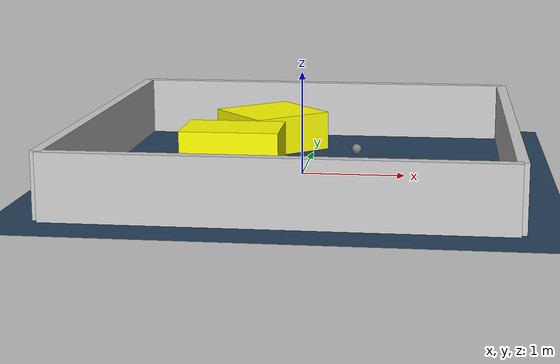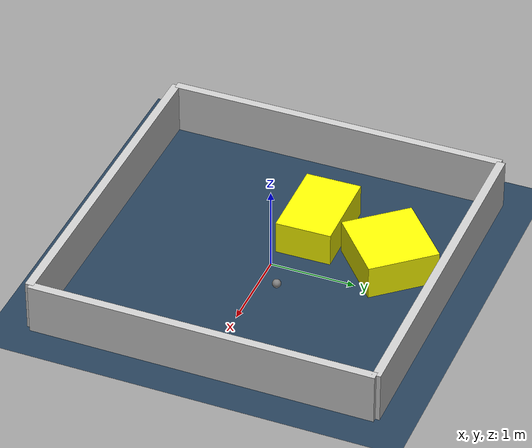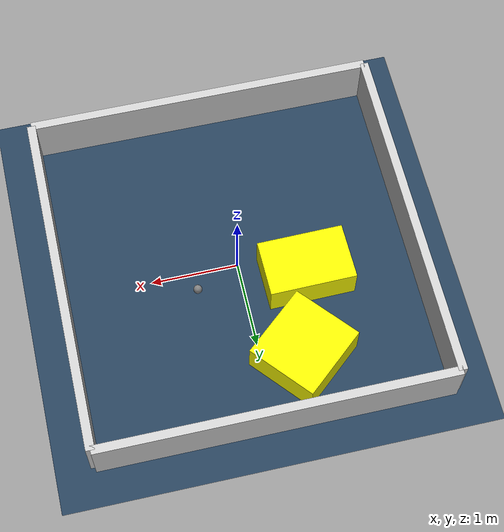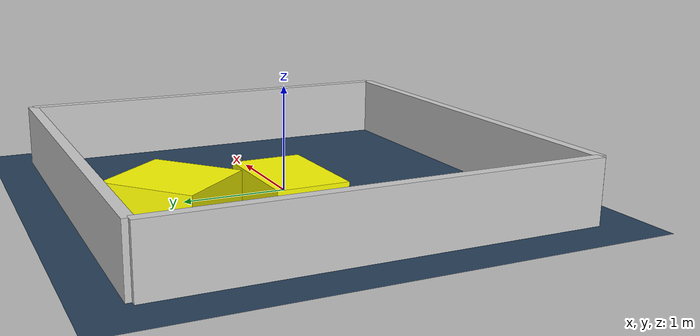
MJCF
<?xml version="1.0" ?>
<mujoco model="generated_environment">
  <option timestep="0.01" integrator="RK4" cone="elliptic"/>
  <default>
    <geom density="1"/>
  </default>
  <asset>
    <texture builtin="gradient" height="3072" rgb1="0.3 0.5 0.7" rgb2="0 0 0" type="skybox" width="512"/>
    <texture builtin="checker" height="300" mark="edge" markrgb="0.8 0.8 0.8" name="groundplane" rgb1="0.2 0.3 0.4" rgb2="0.1 0.2 0.3" type="2d" width="300"/>
    <material name="groundplane" reflectance="0.2" texrepeat="5 5" texture="groundplane" texuniform="true"/>
    <material name="robot" rgba="0.0 1.0 0.0 1"/>
  </asset>
  <worldbody>
    <light dir="0 0 -1" directional="true" pos="0 0 1.5"/>
    <geom condim="4" friction="1.0 0.005 0.001" material="groundplane" name="floor" size="0 0 0.05" type="plane"/>
    <body name="walls">
      <geom name="wall_1" condim="4" pos="-2.0 0.0 0.3" rgba="0.800000011920929 0.800000011920929 0.800000011920929 1.0" size="0.05 2.0 0.3" type="box"/>
      <geom name="wall_2" condim="4" pos="2.0 0.0 0.3" rgba="0.800000011920929 0.800000011920929 0.800000011920929 1.0" size="0.05 2.0 0.3" type="box"/>
      <geom name="wall_3" condim="4" pos="0.0 -2.0 0.3" rgba="0.800000011920929 0.800000011920929 0.800000011920929 1.0" size="2.0 0.05 0.3" type="box"/>
      <geom name="wall_4" condim="4" pos="0.0 2.0 0.3" rgba="0.800000011920929 0.800000011920929 0.800000011920929 1.0" size="2.0 0.05 0.3" type="box"/>
    </body>
    <body name="robot">
      <joint name="joint_x" type="slide" pos="0 0 0" axis="1 0 0"/>
      <joint name="joint_y" type="slide" pos="0 0 0" axis="0 1 0"/>
      <geom name="robot" type="sphere" pos="0.5153678241357986 0.2793687069589863 0.2" size="0.05" mass="5." friction="1.0 0.005 0.0001" condim="4"/>
      <site name="sensor_ball"/>
    </body>
    <body name="obstacle_1_movable">
      <geom name="obstacle_1_movable" condim="4" pos="-0.7348454613023487 0.28095315424569445 0.2" euler="0 0 0.8180056437166572" friction="1.0 0.005 0.001" rgba="1 1 0 1" size="0.4939165725790926 0.3260319709397975 0.2" type="box" mass="0.1"/>
      <joint type="free"/>
    </body>
    <body name="obstacle_2_movable">
      <geom name="obstacle_2_movable" condim="4" pos="-0.46977867633802384 1.2383396512888185 0.2" euler="0 0 310.7736271865478" friction="1.0 0.005 0.001" rgba="1 1 0 1" size="0.41741856116404963 0.4428771040964665 0.2" type="box" mass="0.1"/>
      <joint type="free"/>
    </body>
  </worldbody>
  <actuator>
    <motor name="actuator_x" joint="joint_x" gear="1" ctrlrange="-1 1"/>
    <motor name="actuator_y" joint="joint_y" gear="1" ctrlrange="-1 1"/>
  </actuator>
</mujoco>
